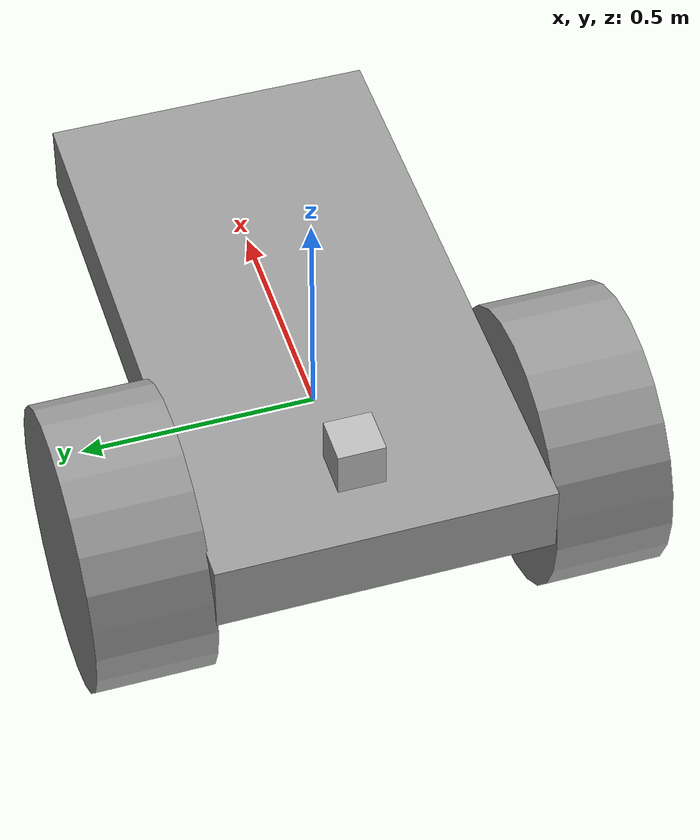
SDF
<?xml version='1.0'?>
<sdf version='1.7'>
    <model name='my_vehicle'>
        <link name='link_0'>
            <inertial>
                <mass>0.146363</mass>
                <inertia>
                    <ixx>0.00644802</ixx>
                    <ixy>0</ixy>
                    <ixz>0</ixz>
                    <iyy>0.0217131</iyy>
                    <iyz>0</iyz>
                    <izz>0.0275698</izz>
                </inertia>
                <pose>0 0 0.4 0 -0 0</pose>
            </inertial>
            <pose>0.150188 -0.001044 0.062375 0 -0 0</pose>
            <gravity>1</gravity>
            <self_collide>0</self_collide>
            <kinematic>0</kinematic>
            <enable_wind>0</enable_wind>
            <visual name='visual'>
                <pose>0 0 0 0 -0 0</pose>
                <geometry>
                    <box>
                        <size>1.32513 0.710223 0.155699</size>
                    </box>
                </geometry>
                <material>
                    <lighting>1</lighting>
                    <script>
                        <uri>file://media/materials/scripts/gazebo.material</uri>
                        <name>Gazebo/Grey</name>
                    </script>
                    <shader type='pixel'>
                        <normal_map>__default__</normal_map>
                    </shader>
                    <ambient>0.3 0.3 0.3 1</ambient>
                    <diffuse>0.7 0.7 0.7 1</diffuse>
                    <specular>0.01 0.01 0.01 1</specular>
                    <emissive>0 0 0 1</emissive>
                </material>
                <transparency>0</transparency>
                <cast_shadows>1</cast_shadows>
            </visual>
            <collision name='collision'>
                <laser_retro>0</laser_retro>
                <max_contacts>10</max_contacts>
                <pose>0 0 0 0 -0 0</pose>
                <geometry>
                    <box>
                        <size>1.32513 0.710223 0.155699</size>
                    </box>
                </geometry>
                <surface>
                    <friction>
                        <ode>
                            <mu>1</mu>
                            <mu2>1</mu2>
                            <fdir1>0 0 0</fdir1>
                            <slip1>0</slip1>
                            <slip2>0</slip2>
                        </ode>
                        <torsional>
                            <coefficient>1</coefficient>
                            <patch_radius>0</patch_radius>
                            <surface_radius>0</surface_radius>
                            <use_patch_radius>1</use_patch_radius>
                            <ode>
                                <slip>0</slip>
                            </ode>
                        </torsional>
                    </friction>
                    <bounce>
                        <restitution_coefficient>0</restitution_coefficient>
                        <threshold>1e+06</threshold>
                    </bounce>
                    <contact>
                        <collide_without_contact>0</collide_without_contact>
                        <collide_without_contact_bitmask>1</collide_without_contact_bitmask>
                        <collide_bitmask>1</collide_bitmask>
                        <ode>
                            <soft_cfm>0</soft_cfm>
                            <soft_erp>0.2</soft_erp>
                            <kp>1e+13</kp>
                            <kd>1</kd>
                            <max_vel>0.01</max_vel>
                            <min_depth>0</min_depth>
                        </ode>
                        <bullet>
                            <split_impulse>1</split_impulse>
                            <split_impulse_penetration_threshold>-0.01</split_impulse_penetration_threshold>
                            <soft_cfm>0</soft_cfm>
                            <soft_erp>0.2</soft_erp>
                            <kp>1e+13</kp>
                            <kd>1</kd>
                        </bullet>
                    </contact>
                </surface>
            </collision>
        </link>
        <link name='link_1'>
            <inertial>
                <mass>1</mass>
                <inertia>
                    <ixx>0.1</ixx>
                    <ixy>0</ixy>
                    <ixz>0</ixz>
                    <iyy>0.1</iyy>
                    <iyz>0</iyz>
                    <izz>0.1</izz>
                </inertia>
                <pose>0 0 0 0 -0 0</pose>
            </inertial>
            <pose>-0.212255 -0.484781 -0.037625 1.5707 -0 0</pose>
            <gravity>1</gravity>
            <self_collide>0</self_collide>
            <kinematic>0</kinematic>
            <enable_wind>0</enable_wind>
            <visual name='visual'>
                <pose>0 0 0 0 -0 0</pose>
                <geometry>
                    <cylinder>
                        <radius>0.3</radius>
                        <length>0.25</length>
                    </cylinder>
                </geometry>
                <material>
                    <lighting>1</lighting>
                    <script>
                        <uri>file://media/materials/scripts/gazebo.material</uri>
                        <name>Gazebo/Grey</name>
                    </script>
                    <shader type='pixel'>
                        <normal_map>__default__</normal_map>
                    </shader>
                    <ambient>0.3 0.3 0.3 1</ambient>
                    <diffuse>0.7 0.7 0.7 1</diffuse>
                    <specular>0.01 0.01 0.01 1</specular>
                    <emissive>0 0 0 1</emissive>
                </material>
                <transparency>0</transparency>
                <cast_shadows>1</cast_shadows>
            </visual>
            <collision name='collision'>
                <laser_retro>0</laser_retro>
                <max_contacts>10</max_contacts>
                <pose>0 0 0 0 -0 0</pose>
                <geometry>
                    <cylinder>
                        <radius>0.3</radius>
                        <length>0.25</length>
                    </cylinder>
                </geometry>
                <surface>
                    <friction>
                        <ode>
                            <mu>1</mu>
                            <mu2>1</mu2>
                            <fdir1>0 0 0</fdir1>
                            <slip1>0</slip1>
                            <slip2>0</slip2>
                        </ode>
                        <torsional>
                            <coefficient>1</coefficient>
                            <patch_radius>0</patch_radius>
                            <surface_radius>0</surface_radius>
                            <use_patch_radius>1</use_patch_radius>
                            <ode>
                                <slip>0</slip>
                            </ode>
                        </torsional>
                    </friction>
                    <bounce>
                        <restitution_coefficient>0</restitution_coefficient>
                        <threshold>1e+06</threshold>
                    </bounce>
                    <contact>
                        <collide_without_contact>0</collide_without_contact>
                        <collide_without_contact_bitmask>1</collide_without_contact_bitmask>
                        <collide_bitmask>1</collide_bitmask>
                        <ode>
                            <soft_cfm>0</soft_cfm>
                            <soft_erp>0.2</soft_erp>
                            <kp>1e+13</kp>
                            <kd>1</kd>
                            <max_vel>0.01</max_vel>
                            <min_depth>0</min_depth>
                        </ode>
                        <bullet>
                            <split_impulse>1</split_impulse>
                            <split_impulse_penetration_threshold>-0.01</split_impulse_penetration_threshold>
                            <soft_cfm>0</soft_cfm>
                            <soft_erp>0.2</soft_erp>
                            <kp>1e+13</kp>
                            <kd>1</kd>
                        </bullet>
                    </contact>
                </surface>
            </collision>
        </link>
        <link name='link_1_clone'>
            <inertial>
                <mass>1</mass>
                <inertia>
                    <ixx>0.1</ixx>
                    <ixy>0</ixy>
                    <ixz>0</ixz>
                    <iyy>0.1</iyy>
                    <iyz>0</iyz>
                    <izz>0.1</izz>
                </inertia>
                <pose>0 0 0 0 -0 0</pose>
            </inertial>
            <pose>-0.212255 0.475501 -0.037625 1.5707 -0 0</pose>
            <gravity>1</gravity>
            <self_collide>0</self_collide>
            <kinematic>0</kinematic>
            <enable_wind>0</enable_wind>
            <visual name='visual'>
                <pose>0 0 0 0 -0 0</pose>
                <geometry>
                    <cylinder>
                        <radius>0.3</radius>
                        <length>0.25</length>
                    </cylinder>
                </geometry>
                <material>
                    <lighting>1</lighting>
                    <script>
                        <uri>file://media/materials/scripts/gazebo.material</uri>
                        <name>Gazebo/Grey</name>
                    </script>
                    <shader type='pixel'>
                        <normal_map>__default__</normal_map>
                    </shader>
                    <ambient>0.3 0.3 0.3 1</ambient>
                    <diffuse>0.7 0.7 0.7 1</diffuse>
                    <specular>0.01 0.01 0.01 1</specular>
                    <emissive>0 0 0 1</emissive>
                </material>
                <transparency>0</transparency>
                <cast_shadows>1</cast_shadows>
            </visual>
            <collision name='collision'>
                <laser_retro>0</laser_retro>
                <max_contacts>10</max_contacts>
                <pose>0 0 0 0 -0 0</pose>
                <geometry>
                    <cylinder>
                        <radius>0.3</radius>
                        <length>0.25</length>
                    </cylinder>
                </geometry>
                <surface>
                    <friction>
                        <ode>
                            <mu>1</mu>
                            <mu2>1</mu2>
                            <fdir1>0 0 0</fdir1>
                            <slip1>0</slip1>
                            <slip2>0</slip2>
                        </ode>
                        <torsional>
                            <coefficient>1</coefficient>
                            <patch_radius>0</patch_radius>
                            <surface_radius>0</surface_radius>
                            <use_patch_radius>1</use_patch_radius>
                            <ode>
                                <slip>0</slip>
                            </ode>
                        </torsional>
                    </friction>
                    <bounce>
                        <restitution_coefficient>0</restitution_coefficient>
                        <threshold>1e+06</threshold>
                    </bounce>
                    <contact>
                        <collide_without_contact>0</collide_without_contact>
                        <collide_without_contact_bitmask>1</collide_without_contact_bitmask>
                        <collide_bitmask>1</collide_bitmask>
                        <ode>
                            <soft_cfm>0</soft_cfm>
                            <soft_erp>0.2</soft_erp>
                            <kp>1e+13</kp>
                            <kd>1</kd>
                            <max_vel>0.01</max_vel>
                            <min_depth>0</min_depth>
                        </ode>
                        <bullet>
                            <split_impulse>1</split_impulse>
                            <split_impulse_penetration_threshold>-0.01</split_impulse_penetration_threshold>
                            <soft_cfm>0</soft_cfm>
                            <soft_erp>0.2</soft_erp>
                            <kp>1e+13</kp>
                            <kd>1</kd>
                        </bullet>
                    </contact>
                </surface>
            </collision>
        </link>
        <link name='link_2'>
            <inertial>
                <mass>0.514234</mass>
                <inertia>
                    <ixx>0.0330073</ixx>
                    <ixy>0</ixy>
                    <ixz>0</ixz>
                    <iyy>0.0330073</iyy>
                    <iyz>0</iyz>
                    <izz>0.0330073</izz>
                </inertia>
                <pose>0 0 0 0 -0 0</pose>
            </inertial>
            <pose>0.612875 -0.00464 -0.137625 0 -0 0</pose>
            <gravity>1</gravity>
            <self_collide>0</self_collide>
            <kinematic>0</kinematic>
            <enable_wind>0</enable_wind>
            <visual name='visual'>
                <pose>0 0 0 0 -0 0</pose>
                <geometry>
                    <sphere>
                        <radius>0.2</radius>
                    </sphere>
                </geometry>
                <material>
                    <lighting>1</lighting>
                    <script>
                        <uri>file://media/materials/scripts/gazebo.material</uri>
                        <name>Gazebo/Grey</name>
                    </script>
                    <shader type='pixel'>
                        <normal_map>__default__</normal_map>
                    </shader>
                    <ambient>0.3 0.3 0.3 1</ambient>
                    <diffuse>0.7 0.7 0.7 1</diffuse>
                    <specular>0.01 0.01 0.01 1</specular>
                    <emissive>0 0 0 1</emissive>
                </material>
                <transparency>0</transparency>
                <cast_shadows>1</cast_shadows>
            </visual>
            <collision name='collision'>
                <laser_retro>0</laser_retro>
                <max_contacts>10</max_contacts>
                <pose>0 0 0 0 -0 0</pose>
                <geometry>
                    <sphere>
                        <radius>0.2</radius>
                    </sphere>
                </geometry>
                <surface>
                    <friction>
                        <ode>
                            <mu>1</mu>
                            <mu2>1</mu2>
                            <fdir1>0 0 0</fdir1>
                            <slip1>0</slip1>
                            <slip2>0</slip2>
                        </ode>
                        <torsional>
                            <coefficient>1</coefficient>
                            <patch_radius>0</patch_radius>
                            <surface_radius>0</surface_radius>
                            <use_patch_radius>1</use_patch_radius>
                            <ode>
                                <slip>0</slip>
                            </ode>
                        </torsional>
                    </friction>
                    <bounce>
                        <restitution_coefficient>0</restitution_coefficient>
                        <threshold>1e+06</threshold>
                    </bounce>
                    <contact>
                        <collide_without_contact>0</collide_without_contact>
                        <collide_without_contact_bitmask>1</collide_without_contact_bitmask>
                        <collide_bitmask>1</collide_bitmask>
                        <ode>
                            <soft_cfm>0</soft_cfm>
                            <soft_erp>0.2</soft_erp>
                            <kp>1e+13</kp>
                            <kd>1</kd>
                            <max_vel>0.01</max_vel>
                            <min_depth>0</min_depth>
                        </ode>
                        <bullet>
                            <split_impulse>1</split_impulse>
                            <split_impulse_penetration_threshold>-0.01</split_impulse_penetration_threshold>
                            <soft_cfm>0</soft_cfm>
                            <soft_erp>0.2</soft_erp>
                            <kp>1e+13</kp>
                            <kd>1</kd>
                        </bullet>
                    </contact>
                </surface>
            </collision>
        </link>
        <model name='depth_camera'>
            <link name='link'>
                <pose>0 0 0.05 0 -0 0</pose>
                <inertial>
                    <mass>0.1</mass>
                    <inertia>
                        <ixx>0.000166667</ixx>
                        <iyy>0.000166667</iyy>
                        <izz>0.000166667</izz>
                        <ixy>0</ixy>
                        <ixz>0</ixz>
                        <iyz>0</iyz>
                    </inertia>
                    <pose>0 0 0 0 -0 0</pose>
                </inertial>
                <collision name='collision'>
                    <geometry>
                        <box>
                            <size>0.1 0.1 0.1</size>
                        </box>
                    </geometry>
                    <max_contacts>10</max_contacts>
                    <surface>
                        <contact>
                            <ode/>
                        </contact>
                        <bounce/>
                        <friction>
                            <torsional>
                                <ode/>
                            </torsional>
                            <ode/>
                        </friction>
                    </surface>
                </collision>
                <visual name='visual'>
                    <geometry>
                        <box>
                            <size>0.1 0.1 0.1</size>
                        </box>
                    </geometry>
                </visual>
                <sensor name='camera' type='depth'>
                    <camera>
                        <horizontal_fov>1.047</horizontal_fov>
                        <image>
                            <width>320</width>
                            <height>240</height>
                        </image>
                        <clip>
                            <near>0.1</near>
                            <far>100</far>
                        </clip>
                    </camera>
                    <plugin name="camera_plugin" filename="libgazebo_ros_openni_kinect.so">
                        <baseline>0.2</baseline>
                        <alwaysOn>true</alwaysOn>
                        <updateRate>20</updateRate>
                        <cameraName>camera_ir</cameraName>
                        <imageTopicName>/camera/color/image_raw</imageTopicName>
                        <cameraInfoTopicName>/camera/color/camera_info</cameraInfoTopicName>
                        <depthImageTopicName>/camera/depth/image_raw</depthImageTopicName>
                        <depthImageCameraInfoTopicName>/camera/depth/camera_info</depthImageCameraInfoTopicName>
                        <pointCloudTopicName>/camera/depth/points</pointCloudTopicName>
                        <frameName>depth_camera_link</frameName>
                        <pointCloudCutoff>0.05</pointCloudCutoff>
                        <distortionK1>0</distortionK1>
                        <distortionK2>0</distortionK2>
                        <distortionK3>0</distortionK3>
                        <distortionT1>0</distortionT1>
                        <distortionT2>0</distortionT2>
                        <CxPrime>0</CxPrime>
                        <Cx>0</Cx>
                        <Cy>0</Cy>
                        <focalLength>0</focalLength>
                        <hackBaseline>0</hackBaseline>
                    </plugin>
                    <always_on>1</always_on>
                    <update_rate>20</update_rate>
                    <visualize>1</visualize>
                </sensor>
                <self_collide>0</self_collide>
                <enable_wind>0</enable_wind>
                <kinematic>0</kinematic>
            </link>
            <pose>-0.338553 0.014965 0.150501 0 -0 0</pose>
        </model>
        <joint name='link_0_JOINT_0' type='revolute'>
            <parent>link_0</parent>
            <child>link_1_clone</child>
            <pose>0 0 -0.03 0 -0 0</pose>
            <axis>
                <xyz>0 0 1</xyz>
                <limit>
                    <lower>-1.79769e+308</lower>
                    <upper>1.79769e+308</upper>
                    <effort>-1</effort>
                    <velocity>-1</velocity>
                </limit>
                <dynamics>
                    <spring_reference>0</spring_reference>
                    <spring_stiffness>0</spring_stiffness>
                    <damping>0</damping>
                    <friction>0</friction>
                </dynamics>
            </axis>
            <physics>
                <ode>
                    <limit>
                        <cfm>0</cfm>
                        <erp>0.2</erp>
                    </limit>
                    <suspension>
                        <cfm>0</cfm>
                        <erp>0.2</erp>
                    </suspension>
                </ode>
            </physics>
        </joint>
        <joint name='link_0_JOINT_2' type='revolute'>
            <parent>link_0</parent>
            <child>link_1</child>
            <pose>0 0 0 0 -0 0</pose>
            <axis>
                <xyz>1 0 0</xyz>
                <limit>
                    <lower>-1.79769e+308</lower>
                    <upper>1.79769e+308</upper>
                    <effort>-1</effort>
                    <velocity>-1</velocity>
                </limit>
                <dynamics>
                    <spring_reference>0</spring_reference>
                    <spring_stiffness>0</spring_stiffness>
                    <damping>0</damping>
                    <friction>0</friction>
                </dynamics>
            </axis>
            <physics>
                <ode>
                    <limit>
                        <cfm>0</cfm>
                        <erp>0.2</erp>
                    </limit>
                    <suspension>
                        <cfm>0</cfm>
                        <erp>0.2</erp>
                    </suspension>
                </ode>
            </physics>
        </joint>
        <joint name='link_0_JOINT_3' type='ball'>
            <parent>link_0</parent>
            <child>link_2</child>
            <pose>0 0 0 0 -0 0</pose>
            <physics>
                <ode>
                    <limit>
                        <cfm>0</cfm>
                        <erp>0.2</erp>
                    </limit>
                    <suspension>
                        <cfm>0</cfm>
                        <erp>0.2</erp>
                    </suspension>
                </ode>
            </physics>
        </joint>
        <joint name='link_0_JOINT_4' type='fixed'>
            <parent>link_0</parent>
            <child>depth_camera::link</child>
            <pose>0 0 0 0 -0 0</pose>
            <physics>
                <ode>
                    <limit>
                        <cfm>0</cfm>
                        <erp>0.2</erp>
                    </limit>
                    <suspension>
                        <cfm>0</cfm>
                        <erp>0.2</erp>
                    </suspension>
                </ode>
            </physics>
        </joint>
        <static>0</static>
        <allow_auto_disable>1</allow_auto_disable>
        <plugin name='follower' filename='libFollowerPlugin.so'/>
    </model>
</sdf>
